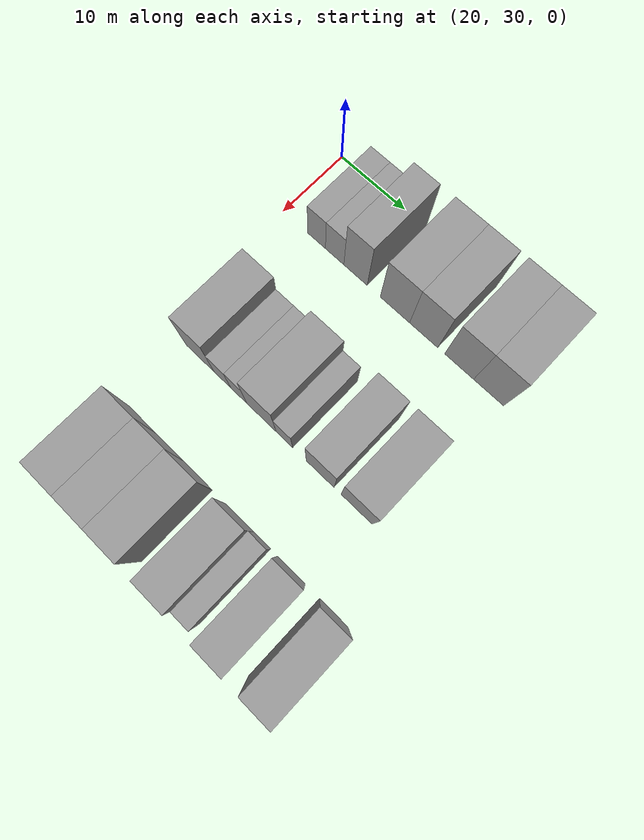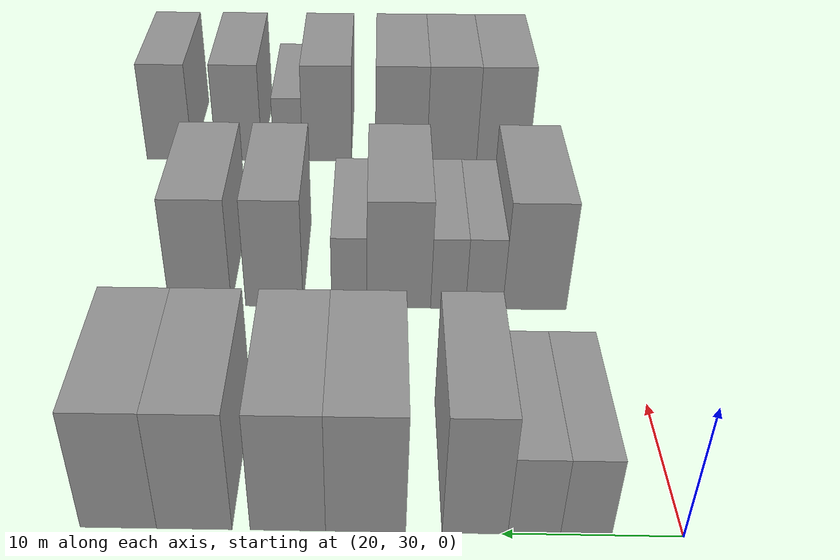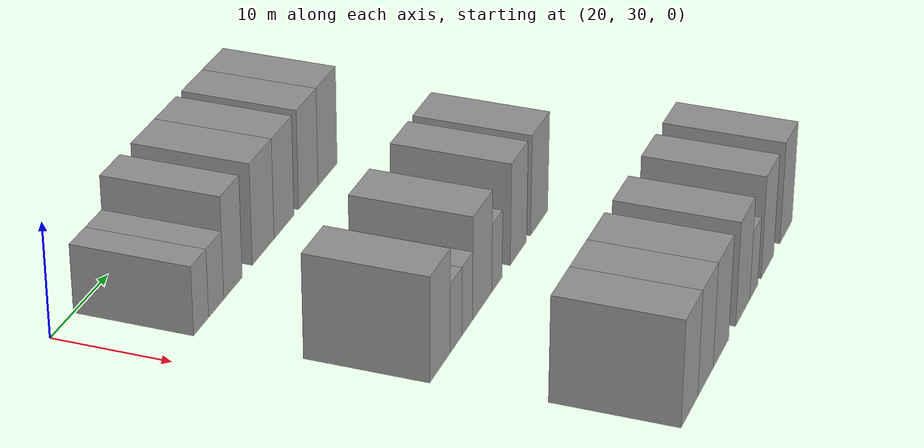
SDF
<sdf version="1.6">
 <world name="default">
  <model name="building_57">
   <static>1</static>
   <pose>25.0000 35.3784 0 0.000000 0.000000 0.000000</pose>
   <link name="link">
    <pose>0 0 3.00 0 0 0</pose>
    <collision name="collision"><geometry><box><size>10.0000 2.8191 6.0000</size></box></geometry></collision>
    <visual name="visual">
     <cast_shadows>0</cast_shadows>
     <geometry><box><size>10.0000 2.8191 6.0000</size></box></geometry>
     <material>
      <script>
       <uri>model://grey_wall/materials/scripts</uri>
       <uri>model://grey_wall/materials/textures</uri>
       <name>vrc/grey_wall</name>
      </script>
     </material>
    </visual>
   </link>
  </model>
  <model name="building_58">
   <static>1</static>
   <pose>25.0000 38.2328 0 0.000000 0.000000 0.000000</pose>
   <link name="link">
    <pose>0 0 3.00 0 0 0</pose>
    <collision name="collision"><geometry><box><size>10.0000 2.8897 6.0000</size></box></geometry></collision>
    <visual name="visual">
     <cast_shadows>0</cast_shadows>
     <geometry><box><size>10.0000 2.8897 6.0000</size></box></geometry>
     <material>
      <script>
       <uri>model://grey_wall/materials/scripts</uri>
       <uri>model://grey_wall/materials/textures</uri>
       <name>vrc/grey_wall</name>
      </script>
     </material>
    </visual>
   </link>
  </model>
  <model name="building_59">
   <static>1</static>
   <pose>25.0000 41.4894 0 0.000000 0.000000 0.000000</pose>
   <link name="link">
    <pose>0 0 4.50 0 0 0</pose>
    <collision name="collision"><geometry><box><size>10.0000 3.6237 9.0000</size></box></geometry></collision>
    <visual name="visual">
     <cast_shadows>0</cast_shadows>
     <geometry><box><size>10.0000 3.6237 9.0000</size></box></geometry>
     <material>
      <script>
       <uri>model://grey_wall/materials/scripts</uri>
       <uri>model://grey_wall/materials/textures</uri>
       <name>vrc/grey_wall</name>
      </script>
     </material>
    </visual>
   </link>
  </model>
  <model name="building_60">
   <static>1</static>
   <pose>25.0000 47.5171 0 0.000000 0.000000 0.000000</pose>
   <link name="link">
    <pose>0 0 4.50 0 0 0</pose>
    <collision name="collision"><geometry><box><size>10.0000 4.4317 9.0000</size></box></geometry></collision>
    <visual name="visual">
     <cast_shadows>0</cast_shadows>
     <geometry><box><size>10.0000 4.4317 9.0000</size></box></geometry>
     <material>
      <script>
       <uri>model://grey_wall/materials/scripts</uri>
       <uri>model://grey_wall/materials/textures</uri>
       <name>vrc/grey_wall</name>
      </script>
     </material>
    </visual>
   </link>
  </model>
  <model name="building_61">
   <static>1</static>
   <pose>25.0000 51.8195 0 0.000000 0.000000 0.000000</pose>
   <link name="link">
    <pose>0 0 4.50 0 0 0</pose>
    <collision name="collision"><geometry><box><size>10.0000 4.1729 9.0000</size></box></geometry></collision>
    <visual name="visual">
     <cast_shadows>0</cast_shadows>
     <geometry><box><size>10.0000 4.1729 9.0000</size></box></geometry>
     <material>
      <script>
       <uri>model://grey_wall/materials/scripts</uri>
       <uri>model://grey_wall/materials/textures</uri>
       <name>vrc/grey_wall</name>
      </script>
     </material>
    </visual>
   </link>
  </model>
  <model name="building_62">
   <static>1</static>
   <pose>25.0000 57.0015 0 0.000000 0.000000 0.000000</pose>
   <link name="link">
    <pose>0 0 4.50 0 0 0</pose>
    <collision name="collision"><geometry><box><size>10.0000 4.1911 9.0000</size></box></geometry></collision>
    <visual name="visual">
     <cast_shadows>0</cast_shadows>
     <geometry><box><size>10.0000 4.1911 9.0000</size></box></geometry>
     <material>
      <script>
       <uri>model://grey_wall/materials/scripts</uri>
       <uri>model://grey_wall/materials/textures</uri>
       <name>vrc/grey_wall</name>
      </script>
     </material>
    </visual>
   </link>
  </model>
  <model name="building_63">
   <static>1</static>
   <pose>25.0000 61.2238 0 0.000000 0.000000 0.000000</pose>
   <link name="link">
    <pose>0 0 4.50 0 0 0</pose>
    <collision name="collision"><geometry><box><size>10.0000 4.2534 9.0000</size></box></geometry></collision>
    <visual name="visual">
     <cast_shadows>0</cast_shadows>
     <geometry><box><size>10.0000 4.2534 9.0000</size></box></geometry>
     <material>
      <script>
       <uri>model://grey_wall/materials/scripts</uri>
       <uri>model://grey_wall/materials/textures</uri>
       <name>vrc/grey_wall</name>
      </script>
     </material>
    </visual>
   </link>
  </model>
  <model name="building_176">
   <static>1</static>
   <pose>44.0000 36.0074 0 0.000000 0.000000 0.000000</pose>
   <link name="link">
    <pose>0 0 4.50 0 0 0</pose>
    <collision name="collision"><geometry><box><size>10.0000 4.4337 9.0000</size></box></geometry></collision>
    <visual name="visual">
     <cast_shadows>0</cast_shadows>
     <geometry><box><size>10.0000 4.4337 9.0000</size></box></geometry>
     <material>
      <script>
       <uri>model://grey_wall/materials/scripts</uri>
       <uri>model://grey_wall/materials/textures</uri>
       <name>vrc/grey_wall</name>
      </script>
     </material>
    </visual>
   </link>
  </model>
  <model name="building_177">
   <static>1</static>
   <pose>44.0000 39.5148 0 0.000000 0.000000 0.000000</pose>
   <link name="link">
    <pose>0 0 3.00 0 0 0</pose>
    <collision name="collision"><geometry><box><size>10.0000 2.5810 6.0000</size></box></geometry></collision>
    <visual name="visual">
     <cast_shadows>0</cast_shadows>
     <geometry><box><size>10.0000 2.5810 6.0000</size></box></geometry>
     <material>
      <script>
       <uri>model://grey_wall/materials/scripts</uri>
       <uri>model://grey_wall/materials/textures</uri>
       <name>vrc/grey_wall</name>
      </script>
     </material>
    </visual>
   </link>
  </model>
  <model name="building_178">
   <static>1</static>
   <pose>44.0000 42.0296 0 0.000000 0.000000 0.000000</pose>
   <link name="link">
    <pose>0 0 3.00 0 0 0</pose>
    <collision name="collision"><geometry><box><size>10.0000 2.4487 6.0000</size></box></geometry></collision>
    <visual name="visual">
     <cast_shadows>0</cast_shadows>
     <geometry><box><size>10.0000 2.4487 6.0000</size></box></geometry>
     <material>
      <script>
       <uri>model://grey_wall/materials/scripts</uri>
       <uri>model://grey_wall/materials/textures</uri>
       <name>vrc/grey_wall</name>
      </script>
     </material>
    </visual>
   </link>
  </model>
  <model name="building_179">
   <static>1</static>
   <pose>44.0000 45.4891 0 0.000000 0.000000 0.000000</pose>
   <link name="link">
    <pose>0 0 4.50 0 0 0</pose>
    <collision name="collision"><geometry><box><size>10.0000 4.4703 9.0000</size></box></geometry></collision>
    <visual name="visual">
     <cast_shadows>0</cast_shadows>
     <geometry><box><size>10.0000 4.4703 9.0000</size></box></geometry>
     <material>
      <script>
       <uri>model://grey_wall/materials/scripts</uri>
       <uri>model://grey_wall/materials/textures</uri>
       <name>vrc/grey_wall</name>
      </script>
     </material>
    </visual>
   </link>
  </model>
  <model name="building_180">
   <static>1</static>
   <pose>44.0000 48.9495 0 0.000000 0.000000 0.000000</pose>
   <link name="link">
    <pose>0 0 3.00 0 0 0</pose>
    <collision name="collision"><geometry><box><size>10.0000 2.4504 6.0000</size></box></geometry></collision>
    <visual name="visual">
     <cast_shadows>0</cast_shadows>
     <geometry><box><size>10.0000 2.4504 6.0000</size></box></geometry>
     <material>
      <script>
       <uri>model://grey_wall/materials/scripts</uri>
       <uri>model://grey_wall/materials/textures</uri>
       <name>vrc/grey_wall</name>
      </script>
     </material>
    </visual>
   </link>
  </model>
  <model name="building_181">
   <static>1</static>
   <pose>44.0000 54.1902 0 0.000000 0.000000 0.000000</pose>
   <link name="link">
    <pose>0 0 4.50 0 0 0</pose>
    <collision name="collision"><geometry><box><size>10.0000 4.0311 9.0000</size></box></geometry></collision>
    <visual name="visual">
     <cast_shadows>0</cast_shadows>
     <geometry><box><size>10.0000 4.0311 9.0000</size></box></geometry>
     <material>
      <script>
       <uri>model://grey_wall/materials/scripts</uri>
       <uri>model://grey_wall/materials/textures</uri>
       <name>vrc/grey_wall</name>
      </script>
     </material>
    </visual>
   </link>
  </model>
  <model name="building_182">
   <static>1</static>
   <pose>44.0000 59.4070 0 0.000000 0.000000 0.000000</pose>
   <link name="link">
    <pose>0 0 4.50 0 0 0</pose>
    <collision name="collision"><geometry><box><size>10.0000 4.4026 9.0000</size></box></geometry></collision>
    <visual name="visual">
     <cast_shadows>0</cast_shadows>
     <geometry><box><size>10.0000 4.4026 9.0000</size></box></geometry>
     <material>
      <script>
       <uri>model://grey_wall/materials/scripts</uri>
       <uri>model://grey_wall/materials/textures</uri>
       <name>vrc/grey_wall</name>
      </script>
     </material>
    </visual>
   </link>
  </model>
  <model name="building_294">
   <static>1</static>
   <pose>63.0000 36.4765 0 0.000000 0.000000 0.000000</pose>
   <link name="link">
    <pose>0 0 4.50 0 0 0</pose>
    <collision name="collision"><geometry><box><size>10.0000 4.4069 9.0000</size></box></geometry></collision>
    <visual name="visual">
     <cast_shadows>0</cast_shadows>
     <geometry><box><size>10.0000 4.4069 9.0000</size></box></geometry>
     <material>
      <script>
       <uri>model://grey_wall/materials/scripts</uri>
       <uri>model://grey_wall/materials/textures</uri>
       <name>vrc/grey_wall</name>
      </script>
     </material>
    </visual>
   </link>
  </model>
  <model name="building_295">
   <static>1</static>
   <pose>63.0000 40.7836 0 0.000000 0.000000 0.000000</pose>
   <link name="link">
    <pose>0 0 4.50 0 0 0</pose>
    <collision name="collision"><geometry><box><size>10.0000 4.2073 9.0000</size></box></geometry></collision>
    <visual name="visual">
     <cast_shadows>0</cast_shadows>
     <geometry><box><size>10.0000 4.2073 9.0000</size></box></geometry>
     <material>
      <script>
       <uri>model://grey_wall/materials/scripts</uri>
       <uri>model://grey_wall/materials/textures</uri>
       <name>vrc/grey_wall</name>
      </script>
     </material>
    </visual>
   </link>
  </model>
  <model name="building_296">
   <static>1</static>
   <pose>63.0000 45.0753 0 0.000000 0.000000 0.000000</pose>
   <link name="link">
    <pose>0 0 4.50 0 0 0</pose>
    <collision name="collision"><geometry><box><size>10.0000 4.3761 9.0000</size></box></geometry></collision>
    <visual name="visual">
     <cast_shadows>0</cast_shadows>
     <geometry><box><size>10.0000 4.3761 9.0000</size></box></geometry>
     <material>
      <script>
       <uri>model://grey_wall/materials/scripts</uri>
       <uri>model://grey_wall/materials/textures</uri>
       <name>vrc/grey_wall</name>
      </script>
     </material>
    </visual>
   </link>
  </model>
  <model name="building_297">
   <static>1</static>
   <pose>63.0000 51.3409 0 0.000000 0.000000 0.000000</pose>
   <link name="link">
    <pose>0 0 4.50 0 0 0</pose>
    <collision name="collision"><geometry><box><size>10.0000 4.1551 9.0000</size></box></geometry></collision>
    <visual name="visual">
     <cast_shadows>0</cast_shadows>
     <geometry><box><size>10.0000 4.1551 9.0000</size></box></geometry>
     <material>
      <script>
       <uri>model://grey_wall/materials/scripts</uri>
       <uri>model://grey_wall/materials/textures</uri>
       <name>vrc/grey_wall</name>
      </script>
     </material>
    </visual>
   </link>
  </model>
  <model name="building_298">
   <static>1</static>
   <pose>63.0000 54.6404 0 0.000000 0.000000 0.000000</pose>
   <link name="link">
    <pose>0 0 3.00 0 0 0</pose>
    <collision name="collision"><geometry><box><size>10.0000 2.4439 6.0000</size></box></geometry></collision>
    <visual name="visual">
     <cast_shadows>0</cast_shadows>
     <geometry><box><size>10.0000 2.4439 6.0000</size></box></geometry>
     <material>
      <script>
       <uri>model://grey_wall/materials/scripts</uri>
       <uri>model://grey_wall/materials/textures</uri>
       <name>vrc/grey_wall</name>
      </script>
     </material>
    </visual>
   </link>
  </model>
  <model name="building_299">
   <static>1</static>
   <pose>63.0000 58.8192 0 0.000000 0.000000 0.000000</pose>
   <link name="link">
    <pose>0 0 4.50 0 0 0</pose>
    <collision name="collision"><geometry><box><size>10.0000 3.9137 9.0000</size></box></geometry></collision>
    <visual name="visual">
     <cast_shadows>0</cast_shadows>
     <geometry><box><size>10.0000 3.9137 9.0000</size></box></geometry>
     <material>
      <script>
       <uri>model://grey_wall/materials/scripts</uri>
       <uri>model://grey_wall/materials/textures</uri>
       <name>vrc/grey_wall</name>
      </script>
     </material>
    </visual>
   </link>
  </model>
  <model name="building_300">
   <static>1</static>
   <pose>63.0000 64.7232 0 0.000000 0.000000 0.000000</pose>
   <link name="link">
    <pose>0 0 4.50 0 0 0</pose>
    <collision name="collision"><geometry><box><size>10.0000 3.8943 9.0000</size></box></geometry></collision>
    <visual name="visual">
     <cast_shadows>0</cast_shadows>
     <geometry><box><size>10.0000 3.8943 9.0000</size></box></geometry>
     <material>
      <script>
       <uri>model://grey_wall/materials/scripts</uri>
       <uri>model://grey_wall/materials/textures</uri>
       <name>vrc/grey_wall</name>
      </script>
     </material>
    </visual>
   </link>
  </model>
 </world>
</sdf>
